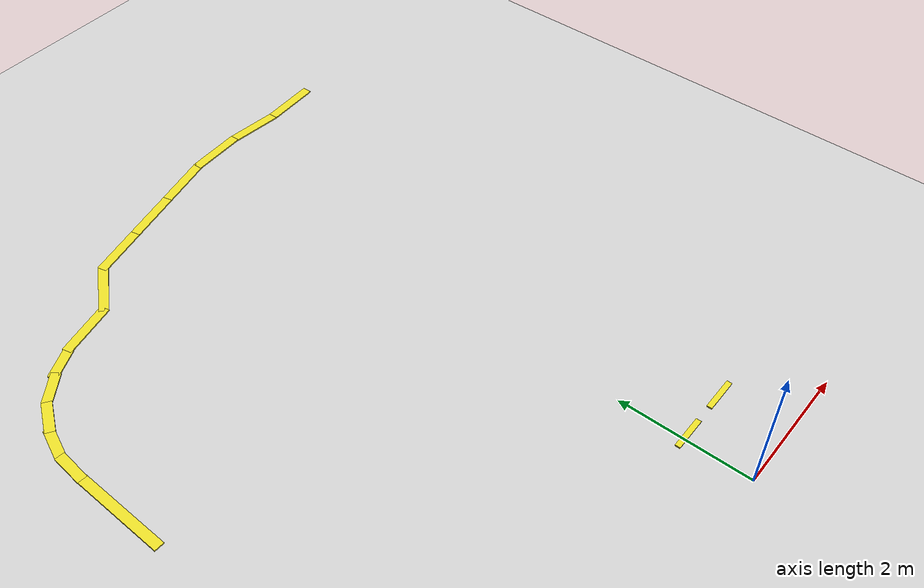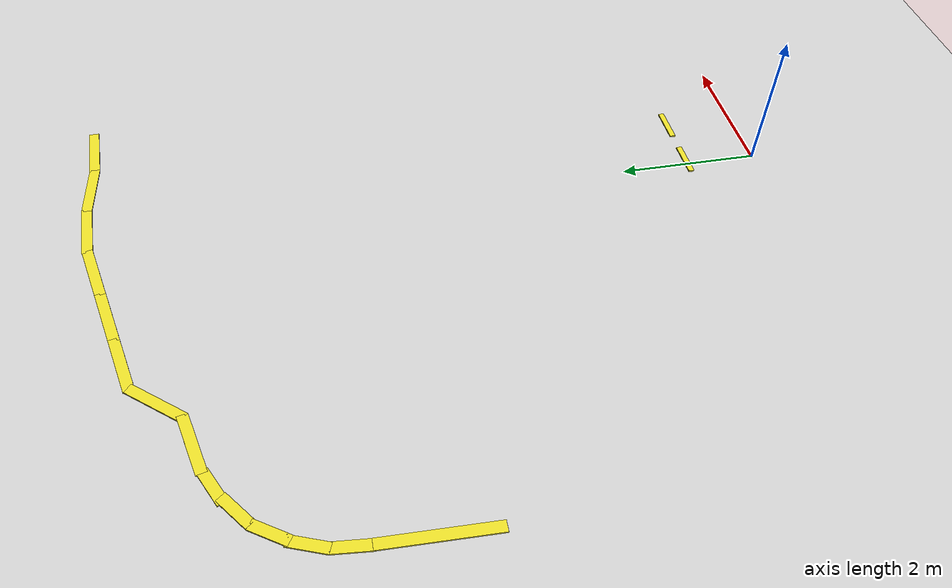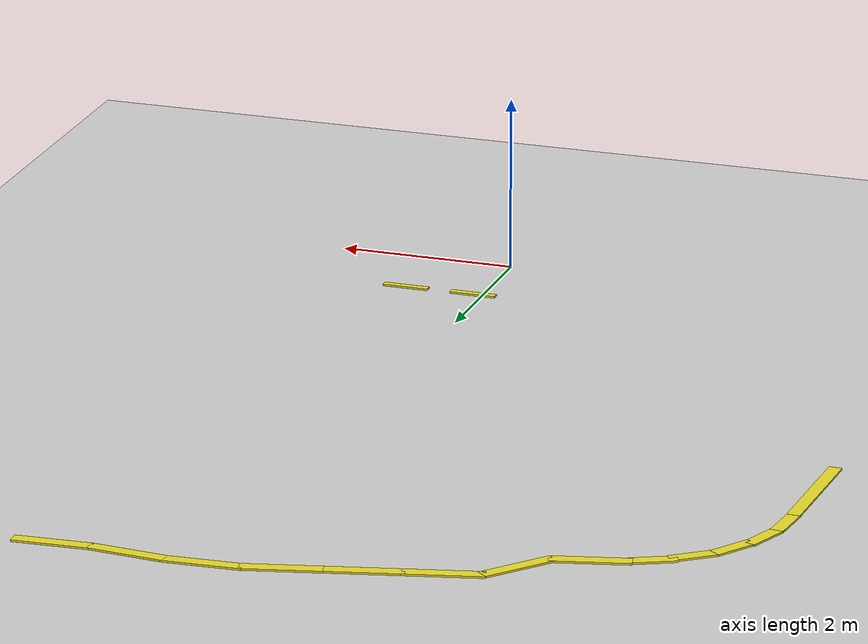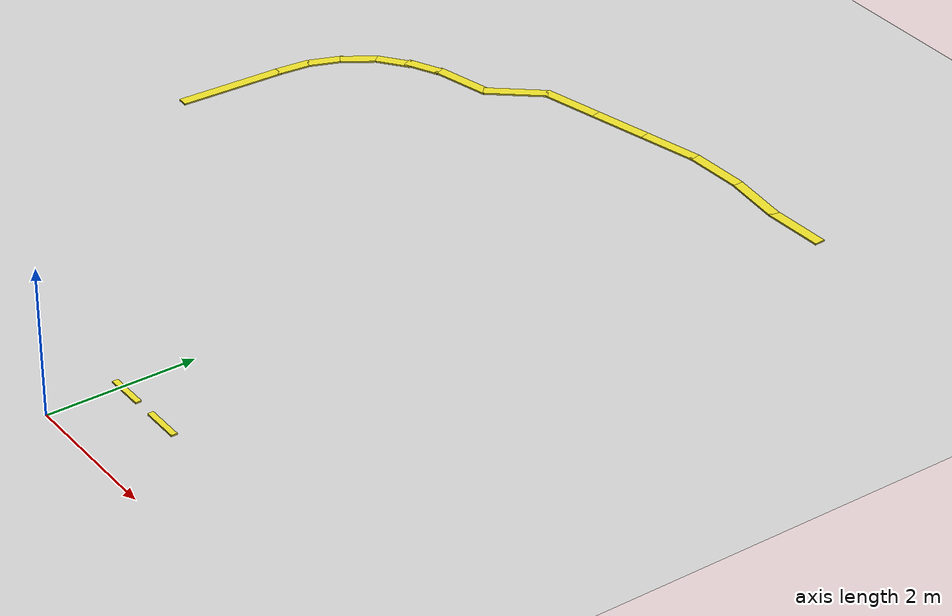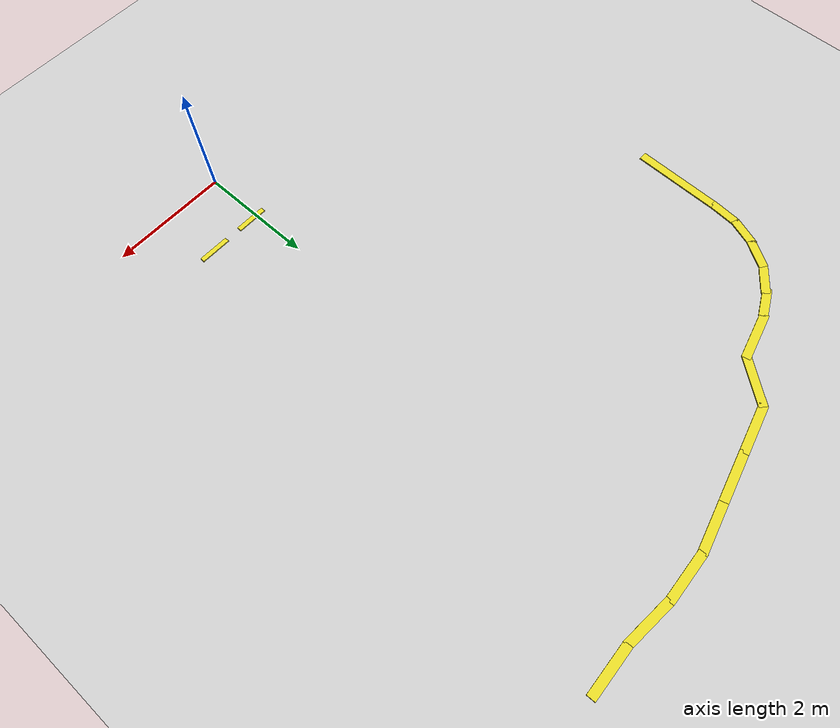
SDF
<sdf version="1.6">
 <world name="default">
  <model name="ground_plane">
   <static>1</static>
   <link name="link">
    <collision name="collision">
     <geometry><plane><normal>0 0 1</normal><size>100 100</size></plane></geometry>
     <surface>
      <contact><collide_bitmask>65535</collide_bitmask></contact>
      <friction><ode><mu>100</mu><mu2>50</mu2></ode></friction>
     </surface>
    </collision>
    <visual name="visual">
     <cast_shadows>0</cast_shadows>
     <geometry><plane><normal>0 0 1</normal><size>100 100</size></plane></geometry>
     <material>
      <script><uri>file://media/materials/scripts/gazebo.material</uri><name>Gazebo/Grey</name></script>
     </material>
    </visual>
   </link>
  </model>
  <model name="unit_box_clone_clone_clone_clone_1_clone_clone_0_clone_clone_clone">
   <static>1</static>
   <pose>1.8162 9.6949 4.6e-05 0 -0 0.047714</pose>
   <link name="link">
    <gravity>0</gravity>
    <inertial>
     <mass>1</mass>
     <inertia>
      <ixx>0.166667</ixx>
      <ixy>0</ixy>
      <ixz>0</ixz>
      <iyy>0.166667</iyy>
      <iyz>0</iyz>
      <izz>0.166667</izz>
     </inertia>
    </inertial>
    <collision name="collision"><geometry><box><size>0 0 0</size></box></geometry></collision>
    <visual name="visual">
     <geometry><box><size>0.867362 0.147 0.021</size></box></geometry>
     <material>
      <script><name>Gazebo/Yellow</name><uri>file://media/materials/scripts/gazebo.material</uri></script>
     </material>
    </visual>
   </link>
  </model>
  <model name="unit_box_clone_clone_clone_clone_1_clone_clone_0_clone_clone_clone_0">
   <static>1</static>
   <pose>0.983846 9.71556 4.6e-05 0 0 -0.100911</pose>
   <link name="link">
    <gravity>0</gravity>
    <inertial>
     <mass>1</mass>
     <inertia>
      <ixx>0.166667</ixx>
      <ixy>0</ixy>
      <ixz>0</ixz>
      <iyy>0.166667</iyy>
      <iyz>0</iyz>
      <izz>0.166667</izz>
     </inertia>
    </inertial>
    <collision name="collision"><geometry><box><size>0 0 0</size></box></geometry></collision>
    <visual name="visual">
     <geometry><box><size>0.867362 0.147 0.021</size></box></geometry>
     <material>
      <script><name>Gazebo/Yellow</name><uri>file://media/materials/scripts/gazebo.material</uri></script>
     </material>
    </visual>
   </link>
  </model>
  <model name="unit_box_clone_clone_clone_clone_1_clone_clone_0_clone_clone_clone_clone">
   <static>1</static>
   <pose>0.151502 9.73907 4.6e-05 0 -0 0.047714</pose>
   <link name="link">
    <gravity>0</gravity>
    <inertial>
     <mass>1</mass>
     <inertia>
      <ixx>0.166667</ixx>
      <ixy>0</ixy>
      <ixz>0</ixz>
      <iyy>0.166667</iyy>
      <iyz>0</iyz>
      <izz>0.166667</izz>
     </inertia>
    </inertial>
    <collision name="collision"><geometry><box><size>0 0 0</size></box></geometry></collision>
    <visual name="visual">
     <geometry><box><size>0.867362 0.147 0.021</size></box></geometry>
     <material>
      <script><name>Gazebo/Yellow</name><uri>file://media/materials/scripts/gazebo.material</uri></script>
     </material>
    </visual>
   </link>
  </model>
  <model name="unit_box_clone_clone_clone_clone_1_clone_clone_0_clone_clone_clone_clone_clone">
   <static>1</static>
   <pose>-0.665159 9.62074 4.6e-05 0 -0 0.234321</pose>
   <link name="link">
    <gravity>0</gravity>
    <inertial>
     <mass>1</mass>
     <inertia>
      <ixx>0.166667</ixx>
      <ixy>0</ixy>
      <ixz>0</ixz>
      <iyy>0.166667</iyy>
      <iyz>0</iyz>
      <izz>0.166667</izz>
     </inertia>
    </inertial>
    <collision name="collision"><geometry><box><size>0 0 0</size></box></geometry></collision>
    <visual name="visual">
     <geometry><box><size>0.867362 0.147 0.021</size></box></geometry>
     <material>
      <script><name>Gazebo/Yellow</name><uri>file://media/materials/scripts/gazebo.material</uri></script>
     </material>
    </visual>
   </link>
  </model>
  <model name="unit_box_clone_clone_clone_clone_1_clone_clone_0_clone_clone_clone_clone_clone_clone">
   <static>1</static>
   <pose>-1.4834 9.42485 4.6e-05 0 -0 0.234321</pose>
   <link name="link">
    <gravity>0</gravity>
    <inertial>
     <mass>1</mass>
     <inertia>
      <ixx>0.166667</ixx>
      <ixy>0</ixy>
      <ixz>0</ixz>
      <iyy>0.166667</iyy>
      <iyz>0</iyz>
      <izz>0.166667</izz>
     </inertia>
    </inertial>
    <collision name="collision"><geometry><box><size>0 0 0</size></box></geometry></collision>
    <visual name="visual">
     <geometry><box><size>0.867362 0.147 0.021</size></box></geometry>
     <material>
      <script><name>Gazebo/Yellow</name><uri>file://media/materials/scripts/gazebo.material</uri></script>
     </material>
    </visual>
   </link>
  </model>
  <model name="unit_box_clone_clone_clone_clone_1_clone_clone_0_clone_clone_clone_clone_clone_clone_clone">
   <static>1</static>
   <pose>-2.28727 9.23298 4.6e-05 0 -0 0.234321</pose>
   <link name="link">
    <gravity>0</gravity>
    <inertial>
     <mass>1</mass>
     <inertia>
      <ixx>0.166667</ixx>
      <ixy>0</ixy>
      <ixz>0</ixz>
      <iyy>0.166667</iyy>
      <iyz>0</iyz>
      <izz>0.166667</izz>
     </inertia>
    </inertial>
    <collision name="collision"><geometry><box><size>0 0 0</size></box></geometry></collision>
    <visual name="visual">
     <geometry><box><size>0.867362 0.147 0.021</size></box></geometry>
     <material>
      <script><name>Gazebo/Yellow</name><uri>file://media/materials/scripts/gazebo.material</uri></script>
     </material>
    </visual>
   </link>
  </model>
  <model name="unit_box_clone_clone_clone_clone_1_clone_clone_0_clone_clone_clone_clone_clone_clone_clone_clone">
   <static>1</static>
   <pose>-2.94676 8.81367 4.6e-05 0 -0 0.877686</pose>
   <link name="link">
    <gravity>0</gravity>
    <inertial>
     <mass>1</mass>
     <inertia>
      <ixx>0.166667</ixx>
      <ixy>0</ixy>
      <ixz>0</ixz>
      <iyy>0.166667</iyy>
      <iyz>0</iyz>
      <izz>0.166667</izz>
     </inertia>
    </inertial>
    <collision name="collision"><geometry><box><size>0 0 0</size></box></geometry></collision>
    <visual name="visual">
     <geometry><box><size>0.867362 0.147 0.021</size></box></geometry>
     <material>
      <script><name>Gazebo/Yellow</name><uri>file://media/materials/scripts/gazebo.material</uri></script>
     </material>
    </visual>
   </link>
  </model>
  <model name="unit_box_clone_clone_clone_clone_1_clone_clone_0_clone_clone_clone_clone_clone_clone_clone_clone_0">
   <static>1</static>
   <pose>-3.59958 8.40441 4.6e-05 0 -0 0.234321</pose>
   <link name="link">
    <gravity>0</gravity>
    <inertial>
     <mass>1</mass>
     <inertia>
      <ixx>0.166667</ixx>
      <ixy>0</ixy>
      <ixz>0</ixz>
      <iyy>0.166667</iyy>
      <iyz>0</iyz>
      <izz>0.166667</izz>
     </inertia>
    </inertial>
    <collision name="collision"><geometry><box><size>0 0 0</size></box></geometry></collision>
    <visual name="visual">
     <geometry><box><size>0.867362 0.147 0.021</size></box></geometry>
     <material>
      <script><name>Gazebo/Yellow</name><uri>file://media/materials/scripts/gazebo.material</uri></script>
     </material>
    </visual>
   </link>
  </model>
  <model name="unit_box_clone_clone_clone_clone_1_clone_clone_0_clone_clone_clone_clone_clone_clone_clone_clone_0_clone">
   <static>1</static>
   <pose>-4.20841 8.192 4.6e-05 0 -0 0.445891</pose>
   <link name="link">
    <gravity>0</gravity>
    <inertial>
     <mass>1</mass>
     <inertia>
      <ixx>0.166667</ixx>
      <ixy>0</ixy>
      <ixz>0</ixz>
      <iyy>0.166667</iyy>
      <iyz>0</iyz>
      <izz>0.166667</izz>
     </inertia>
    </inertial>
    <collision name="collision"><geometry><box><size>0 0 0</size></box></geometry></collision>
    <visual name="visual">
     <geometry><box><size>0.508923 0.147 0.021</size></box></geometry>
     <material>
      <script><name>Gazebo/Yellow</name><uri>file://media/materials/scripts/gazebo.material</uri></script>
     </material>
    </visual>
   </link>
  </model>
  <model name="unit_box_clone_clone_clone_clone_1_clone_clone_0_clone_clone_clone_clone_clone_clone_clone_clone_0_clone_clone">
   <static>1</static>
   <pose>-4.55513 7.95405 4.6e-05 0 -0 0.651266</pose>
   <link name="link">
    <gravity>0</gravity>
    <inertial>
     <mass>1</mass>
     <inertia>
      <ixx>0.166667</ixx>
      <ixy>0</ixy>
      <ixz>0</ixz>
      <iyy>0.166667</iyy>
      <iyz>0</iyz>
      <izz>0.166667</izz>
     </inertia>
    </inertial>
    <collision name="collision"><geometry><box><size>0 0 0</size></box></geometry></collision>
    <visual name="visual">
     <geometry><box><size>0.508922 0.147 0.021</size></box></geometry>
     <material>
      <script><name>Gazebo/Yellow</name><uri>file://media/materials/scripts/gazebo.material</uri></script>
     </material>
    </visual>
   </link>
  </model>
  <model name="unit_box_clone_clone_clone_clone_1_clone_clone_0_clone_clone_clone_clone_clone_clone_clone_clone_0_clone_clone_clone">
   <static>1</static>
   <pose>-4.88655 7.60145 4.6e-05 0 -0 0.990233</pose>
   <link name="link">
    <gravity>0</gravity>
    <inertial>
     <mass>1</mass>
     <inertia>
      <ixx>0.166667</ixx>
      <ixy>0</ixy>
      <ixz>0</ixz>
      <iyy>0.166667</iyy>
      <iyz>0</iyz>
      <izz>0.166667</izz>
     </inertia>
    </inertial>
    <collision name="collision"><geometry><box><size>0 0 0</size></box></geometry></collision>
    <visual name="visual">
     <geometry><box><size>0.508922 0.147 0.021</size></box></geometry>
     <material>
      <script><name>Gazebo/Yellow</name><uri>file://media/materials/scripts/gazebo.material</uri></script>
     </material>
    </visual>
   </link>
  </model>
  <model name="unit_box_clone_clone_clone_clone_1_clone_clone_0_clone_clone_clone_clone_clone_clone_clone_clone_0_clone_clone_clone_0">
   <static>1</static>
   <pose>-5.09866 7.20761 4.6e-05 0 -0 1.20924</pose>
   <link name="link">
    <gravity>0</gravity>
    <inertial>
     <mass>1</mass>
     <inertia>
      <ixx>0.166667</ixx>
      <ixy>0</ixy>
      <ixz>0</ixz>
      <iyy>0.166667</iyy>
      <iyz>0</iyz>
      <izz>0.166667</izz>
     </inertia>
    </inertial>
    <collision name="collision"><geometry><box><size>0 0 0</size></box></geometry></collision>
    <visual name="visual">
     <geometry><box><size>0.508922 0.147 0.021</size></box></geometry>
     <material>
      <script><name>Gazebo/Yellow</name><uri>file://media/materials/scripts/gazebo.material</uri></script>
     </material>
    </visual>
   </link>
  </model>
  <model name="unit_box_clone_clone_clone_clone_1_clone_clone_0_clone_clone_clone_clone_clone_clone_clone_clone_0_clone_clone_clone_0_clone">
   <static>1</static>
   <pose>-5.20477 6.74859 4.6e-05 0 -0 1.47869</pose>
   <link name="link">
    <gravity>0</gravity>
    <inertial>
     <mass>1</mass>
     <inertia>
      <ixx>0.166667</ixx>
      <ixy>0</ixy>
      <ixz>0</ixz>
      <iyy>0.166667</iyy>
      <iyz>0</iyz>
      <izz>0.166667</izz>
     </inertia>
    </inertial>
    <collision name="collision"><geometry><box><size>0 0 0</size></box></geometry></collision>
    <visual name="visual">
     <geometry><box><size>0.508922 0.147 0.021</size></box></geometry>
     <material>
      <script><name>Gazebo/Yellow</name><uri>file://media/materials/scripts/gazebo.material</uri></script>
     </material>
    </visual>
   </link>
  </model>
  <model name="unit_box_clone_clone_clone_0">
   <static>1</static>
   <pose>-5.24424 5.78218 4.6e-05 0 0 -1.59906</pose>
   <link name="link">
    <gravity>0</gravity>
    <inertial>
     <mass>1</mass>
     <inertia>
      <ixx>0.166667</ixx>
      <ixy>0</ixy>
      <ixz>0</ixz>
      <iyy>0.166667</iyy>
      <iyz>0</iyz>
      <izz>0.166667</izz>
     </inertia>
    </inertial>
    <collision name="collision"><geometry><box><size>0 0 0</size></box></geometry></collision>
    <visual name="visual">
     <geometry><box><size>1.484 0.147 0.021</size></box></geometry>
     <material>
      <script><name>Gazebo/Yellow</name><uri>file://media/materials/scripts/gazebo.material</uri></script>
     </material>
    </visual>
   </link>
  </model>
  <model name="unit_box_clone_1_clone_3_clone_clone_1">
   <static>1</static>
   <pose>0.91687 1.00685 4.6e-05 0 -0 0</pose>
   <link name="link">
    <gravity>0</gravity>
    <inertial>
     <mass>1</mass>
     <inertia>
      <ixx>0.166667</ixx>
      <ixy>0</ixy>
      <ixz>0</ixz>
      <iyy>0.166667</iyy>
      <iyz>0</iyz>
      <izz>0.166667</izz>
     </inertia>
    </inertial>
    <collision name="collision"><geometry><box><size>0 0 0</size></box></geometry></collision>
    <visual name="visual">
     <geometry><box><size>0.533503 0.07987 0.021</size></box></geometry>
     <material>
      <script><name>Gazebo/Yellow</name><uri>file://media/materials/scripts/gazebo.material</uri></script>
     </material>
    </visual>
   </link>
  </model>
  <model name="unit_box_clone_1_clone_3_clone_clone_2">
   <static>1</static>
   <pose>0.116531 1.00693 4.6e-05 0 -0 0</pose>
   <link name="link">
    <gravity>0</gravity>
    <inertial>
     <mass>1</mass>
     <inertia>
      <ixx>0.166667</ixx>
      <ixy>0</ixy>
      <ixz>0</ixz>
      <iyy>0.166667</iyy>
      <iyz>0</iyz>
      <izz>0.166667</izz>
     </inertia>
    </inertial>
    <collision name="collision"><geometry><box><size>0 0 0</size></box></geometry></collision>
    <visual name="visual">
     <geometry><box><size>0.533503 0.07987 0.021</size></box></geometry>
     <material>
      <script><name>Gazebo/Yellow</name><uri>file://media/materials/scripts/gazebo.material</uri></script>
     </material>
    </visual>
   </link>
  </model>
 </world>
</sdf>
